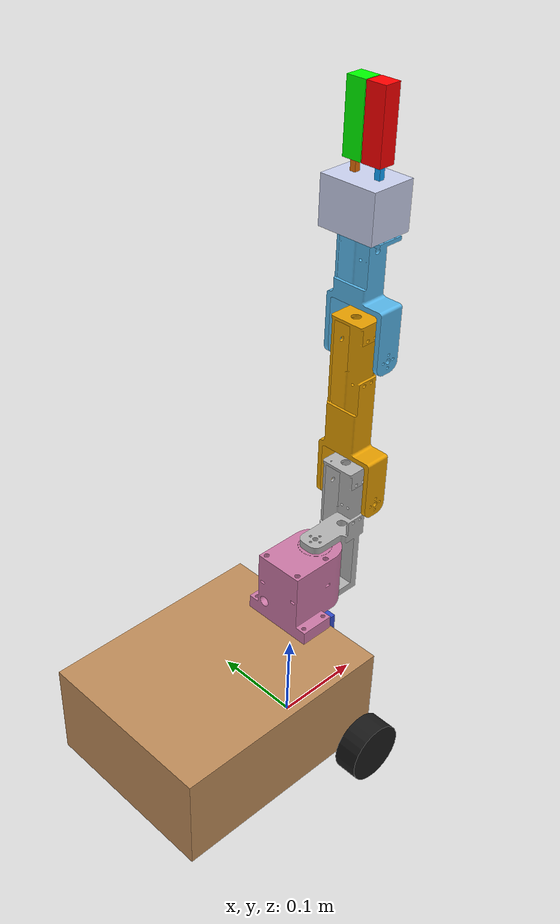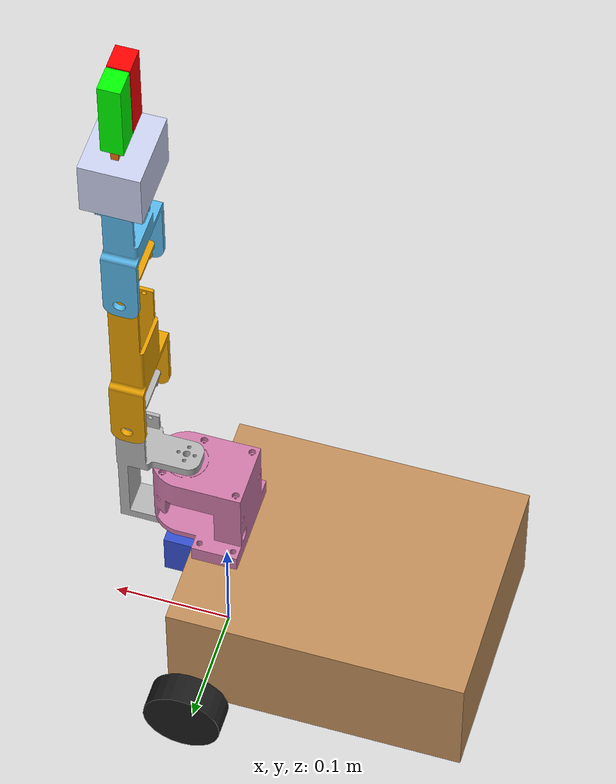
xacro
<?xml version="1.0"?>
<robot xmlns:xacro="http://www.ros.org/wiki/xacro" name="mobile_nanobot">
    <xacro:arg name="initial_positions_file" default="initial_positions.yaml" />

    <!-- Import mobile_nanobot urdf file -->
    <xacro:include filename="$(find my_robot_description)/urdf/mobile_nanobot.xacro" />

    <!-- Import control_xacro -->
    <xacro:include filename="mobile_nanobot.ros2_control.xacro" />

    <xacro:mobile_nanobot_ros2_control name="FakeSystem" initial_positions_file="$(arg initial_positions_file)"/>

</robot>

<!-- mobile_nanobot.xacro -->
<robot name="mobile_nanobot" xmlns:xacro="http://ros.org/wiki/xacro">
    <xacro:include filename="$(find my_robot_description)/urdf/robot.urdf.xacro" />
    <xacro:include filename="$(find my_robot_description)/urdf/arm.urdf" />
    <joint name="arm_base_joint" type="fixed"> <parent link="base_link" />
        <child link="link0" />
        <origin xyz="0.032 0.0 0.1085" rpy="0 0 -1.5708" />
    </joint>
</robot>

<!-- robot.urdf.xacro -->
<robot xmlns:xacro="http://www.ros.org/wiki/xacro" name="mobile_robot">

    <!-- Include Sub-files -->
    <xacro:include filename="inertia_macros.xacro" />
    <xacro:include filename="chassis.xacro" />
    <xacro:include filename="camera.xacro" />

</robot>

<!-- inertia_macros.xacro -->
<robot xmlns:xacro="http://www.ros.org/wiki/xacro">

    <xacro:macro name="inertial_box" params="mass x y z *origin">
        <inertial>
            <xacro:insert_block name="origin"/>
            <mass value="${mass}"/>
            <inertia ixx="${(1/12) * mass * (y*y + z*z)}" ixy="0.0" ixz="0.0"
                     iyy="${(1/12) * mass * (x*x + z*z)}" iyz="0.0"
                     izz="${(1/12) * mass * (x*x + y*y)}"/>
        </inertial>
    </xacro:macro>

    <xacro:macro name="inertial_cylinder" params="mass length radius *origin">
        <inertial>
            <xacro:insert_block name="origin"/>
            <mass value="${mass}"/>
            <inertia ixx="${(1/12) * mass * (3*radius*radius + length*length)}" ixy="0.0" ixz="0.0"
                     iyy="${(1/12) * mass * (3*radius*radius + length*length)}" iyz="0.0"
                     izz="${(1/2) * mass * (radius*radius)}"/>
        </inertial>
    </xacro:macro>

    <xacro:macro name="inertial_sphere" params="mass radius *origin">
        <inertial>
            <xacro:insert_block name="origin"/>
            <mass value="${mass}"/>
            <inertia ixx="${(2/5) * mass * (radius*radius)}" ixy="0.0" ixz="0.0"
                     iyy="${(2/5) * mass * (radius*radius)}" iyz="0.0"
                     izz="${(2/5) * mass * (radius*radius)}"/>
        </inertial>
    </xacro:macro>

</robot>

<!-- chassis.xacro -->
<robot xmlns:xacro="http://www.ros.org/wiki/xacro">

    <!-- MATERIALS & COLORS FOR RVIZ -->
    <material name="wood_mdf">
        <color rgba="0.75 0.55 0.35 1.0"/>
    </material>
    <material name="black">
        <color rgba="0.1 0.1 0.1 1.0"/>
    </material>
    <material name="white">
        <color rgba="0.9 0.9 0.9 1.0"/>
    </material>

    <!-- PROPERTY DEFINITIONS (Tweak these to match physical dimensions) -->
    <xacro:property name="chassis_length" value="0.250"/> <!-- 25 cm -->
    <xacro:property name="chassis_width"  value="0.20"/> <!-- 18 cm -->
    <xacro:property name="chassis_height" value="0.1075"/> <!-- 6 cm 0.060-->
    <xacro:property name="chassis_mass"   value="0.800"/>

    <xacro:property name="wheel_radius"  value="0.033"/> <!-- 66 mm diameter -->
    <xacro:property name="wheel_thickness" value="0.026"/> <!-- 26 mm width -->
    <xacro:property name="wheel_mass"      value="0.050"/>
    <xacro:property name="wheel_offset_y"  value="0.1165"/> <!-- Track width center-to-wheel -->
    <xacro:property name="wheel_offset_x"  value="0.0"/> <!-- Axle position along length -->

    <xacro:property name="caster_radius"  value="0.015"/> <!-- 30 mm caster ball -->
    <xacro:property name="caster_mass"    value="0.030"/>
    <xacro:property name="caster_offset_x" value="-0.185"/> <!-- Front/rear caster position -->

    <!-- 1. BASE FOOTPRINT (Ground plane z=0) -->
    <link name="base_footprint"/>

    <joint name="base_footprint_joint" type="fixed">
        <parent link="base_footprint"/>
        <child link="base_link"/>
        <origin xyz="0 0 ${wheel_radius}" rpy="0 0 0"/>
    </joint>

    <!-- 2. BASE LINK (Main MDF Chassis) -->
    <link name="base_link">
        <visual>
            <origin xyz="-0.105 0 ${chassis_height/2}" rpy="0 0 0"/>
            <geometry>
                <box size="${chassis_length} ${chassis_width} ${chassis_height}"/>
            </geometry>
            <material name="wood_mdf"/>
        </visual>
        <collision>
            <origin xyz="-0.105 0 ${chassis_height/2}" rpy="0 0 0"/>
            <geometry>
                <box size="${chassis_length} ${chassis_width} ${chassis_height}"/>
            </geometry>
        </collision>
        <xacro:inertial_box mass="${chassis_mass}" x="${chassis_length}" y="${chassis_width}" z="${chassis_height}">
            <origin xyz="-0.105 0 ${chassis_height/2}" rpy="0 0 0"/>
        </xacro:inertial_box>
    </link>

    <!-- 3. LEFT WHEEL -->
    <joint name="left_wheel_joint" type="continuous">
        <parent link="base_link"/>
        <child link="left_wheel"/>
        <origin xyz="${wheel_offset_x} ${wheel_offset_y} 0" rpy="-${pi/2} 0 0"/>
        <axis xyz="0 0 1"/>
    </joint>

    <link name="left_wheel">
        <visual>
            <geometry>
                <cylinder radius="${wheel_radius}" length="${wheel_thickness}"/>
            </geometry>
            <material name="black"/>
        </visual>
        <collision>
            <geometry>
                <cylinder radius="${wheel_radius}" length="${wheel_thickness}"/>
            </geometry>
        </collision>
        <xacro:inertial_cylinder mass="${wheel_mass}" length="${wheel_thickness}" radius="${wheel_radius}">
            <origin xyz="0 0 0" rpy="0 0 0"/>
        </xacro:inertial_cylinder>
    </link>

    <!-- 4. RIGHT WHEEL -->
    <joint name="right_wheel_joint" type="continuous">
        <parent link="base_link"/>
        <child link="right_wheel"/>
        <origin xyz="${wheel_offset_x} -${wheel_offset_y} 0" rpy="${pi/2} 0 0"/>
        <axis xyz="0 0 -1"/>
    </joint>

    <link name="right_wheel">
        <visual>
            <geometry>
                <cylinder radius="${wheel_radius}" length="${wheel_thickness}"/>
            </geometry>
            <material name="black"/>
        </visual>
        <collision>
            <geometry>
                <cylinder radius="${wheel_radius}" length="${wheel_thickness}"/>
            </geometry>
        </collision>
        <xacro:inertial_cylinder mass="${wheel_mass}" length="${wheel_thickness}" radius="${wheel_radius}">
            <origin xyz="0 0 0" rpy="0 0 0"/>
        </xacro:inertial_cylinder>
    </link>

    <!-- 5. CASTER WHEEL -->
    <joint name="caster_wheel_joint" type="fixed">
        <parent link="base_link"/>
        <child link="caster_wheel"/>
        <origin xyz="${caster_offset_x} 0 -${wheel_radius - caster_radius}" rpy="0 0 0"/>
    </joint>

    <link name="caster_wheel">
        <visual>
            <geometry>
                <sphere radius="${caster_radius}"/>
            </geometry>
            <material name="white"/>
        </visual>
        <collision>
            <geometry>
                <sphere radius="${caster_radius}"/>
            </geometry>
        </collision>
        <xacro:inertial_sphere mass="${caster_mass}" radius="${caster_radius}">
            <origin xyz="0 0 0" rpy="0 0 0"/>
        </xacro:inertial_sphere>
    </link>

</robot>

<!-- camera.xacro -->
<robot xmlns:xacro="http://www.ros.org/wiki/xacro">

    <material name="camera_blue">
        <color rgba="0.2 0.3 0.8 1.0"/>
    </material>

    <!-- LDS-02RR Physical Dimensions -->
    <xacro:property name="camera_width" value="0.04"/> <!-- ~76mm diameter -->
    <xacro:property name="camera_length" value="0.04"/> <!-- ~76mm diameter -->
    <xacro:property name="camera_height" value="0.07"/> <!-- ~40mm puck height -->
    <xacro:property name="camera_mass"   value="0.200"/>
    <xacro:property name="camera_elevation"   value="0.0725"/>

    <!-- Joint: Attach camera to the top deck of base_link -->
    <joint name="camera_optical_joint" type="fixed">
        <parent link="base_link"/>
        <child link="camera_optical_frame"/>
        <!-- Mounted 6cm forward on top deck -->
        <origin xyz="0.013 0 ${camera_elevation}" rpy="-1.570796327 0 -1.570796327"/>
    </joint>

    <!-- Link: Frame ID used by ROS 2 /scan message -->
    <link name="camera_optical_frame">
        <visual>
            <geometry>
                <box size="${camera_length} ${camera_width} ${camera_height}"/>
            </geometry>
            <material name="camera_blue"/>
        </visual>
        <collision>
            <geometry>
                <box size="${camera_length} ${camera_width} ${camera_height}"/>
            </geometry>
        </collision>
        <xacro:inertial_box mass="${camera_mass}" x="${camera_length}" y="${camera_width}" z="${camera_height}">
            <origin xyz="0 0 0" rpy="0 0 0"/>
        </xacro:inertial_box>
    </link>

</robot>

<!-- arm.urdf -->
<robot name="nanobot" xmlns:xacro="http://www.ros.org/wiki/xacro" >

  <xacro:property name="chassis_length" value="0.405"/>
  <xacro:property name="chassis_width" value="0.405"/>
  <xacro:property name="chassis_mass" value="1.0"/>
  <xacro:property name="wheel_radius" value="0.0625"/>
  <xacro:property name="wheel_thickness" value="0.030"/>
  <xacro:property name="wheel_mass" value="0.05"/>
  <xacro:property name="wheel_offset_x" value="0.025"/>
  <xacro:property name="wheel_offset_y" value="0.2225"/>
  <xacro:property name="wheel_offset_z" value="-0.025"/>
  <xacro:property name="caster_wheel_radius" value="0.02"/>
  <xacro:property name="caster_wheel_mass" value="0.01"/>
  <xacro:property name="caster_wheel_offset_x" value="0.475"/>
  <xacro:property name="caster_wheel_offset_y" value="0.2225"/>
  <xacro:property name="caster_wheel_offset_z" value="${wheel_offset_z - wheel_radius + caster_wheel_radius}"/>

  <xacro:property name="link_0_radius" value="0.08"/>
  <xacro:property name="link_0_height" value="0.062"/>

  <xacro:property name="link_1_radius" value="0.08"/>
  <xacro:property name="link_1_height" value="0.1655"/>

  <xacro:property name="link_2_width" value="0.1346"/>
  <xacro:property name="link_2_length" value="0.1346"/>
  <xacro:property name="link_2_height" value="0.2202"/>

  <xacro:property name="link_3_width" value="0.0776"/>
  <xacro:property name="link_3_length" value="0.095"/>
  <xacro:property name="link_3_height" value="0.1299"/>

  <xacro:property name="link_4_width" value="0.0719"/>
  <xacro:property name="link_4_length" value="0.0891"/>
  <xacro:property name="link_4_height" value="0.0949"/>

  <xacro:property name="link_5_width" value="0.048"/>
  <xacro:property name="link_5_length" value="0.0700"/>
  <xacro:property name="link_5_height" value="0.0510"/>

  <xacro:property name="hand_width" value="0.049"/>
  <xacro:property name="hand_length" value="0.0632"/>
  <xacro:property name="hand_height" value="0.0490"/>

  <xacro:property name="gripper_servo_gear_width" value="0.006"/>
  <xacro:property name="gripper_servo_gear_length" value="0.006"/>
  <xacro:property name="gripper_servo_gear_height" value="0.0399"/>

  <xacro:property name="tip_gripper_servo_width" value="0.018"/>
  <xacro:property name="tip_gripper_servo_length" value="0.021"/>
  <xacro:property name="tip_gripper_servo_height" value="0.07"/>

  <xacro:property name="pivot_arm_gripper_servo_width" value="0.006"/>
  <xacro:property name="pivot_arm_gripper_servo_length" value="0.006"/>
  <xacro:property name="pivot_arm_gripper_servo_height" value="0.0399"/>

  <xacro:property name="gripper_idol_gear_width" value="0.006"/>
  <xacro:property name="gripper_idol_gear_length" value="0.006"/>
  <xacro:property name="gripper_idol_gear_height" value="0.0399"/>

  <xacro:property name="tip_gripper_idol_width" value="0.018"/>
  <xacro:property name="tip_gripper_idol_length" value="0.021"/>
  <xacro:property name="tip_gripper_idol_height" value="0.07"/>

  <xacro:property name="pivot_arm_gripper_idol_width" value="0.006"/>
  <xacro:property name="pivot_arm_gripper_idol_length" value="0.006"/>
  <xacro:property name="pivot_arm_gripper_idol_height" value="0.0399"/>

  <xacro:property name="joint_damping" value="21.75"/>
  <xacro:property name="joint_friction" value="10.48"/>
  <xacro:property name="joint_spring_stiffness" value="0"/>
  <xacro:property name="joint_spring_reference" value="0"/>
  <xacro:property name="gripper_joint_damping" value="0.01"/>
  <xacro:property name="gripper_joint_friction" value="0.01"/>
  <xacro:property name="gripper_joint_spring_stiffness" value="0"/>
  <xacro:property name="gripper_joint_spring_reference" value="0"/>

  <xacro:property name="scale_finger_length" value="0.9" />

  <link name="link0">
    <visual>
      <origin xyz="0 0 0" rpy="0 0 0"/>
      <geometry>
        <mesh filename="package://my_robot_description/meshes/link0.stl" scale="0.001 0.001 0.001"/>
      </geometry>
    </visual>
    <collision>
      <origin xyz="0 0 0" rpy="0 0 0"/>
      <geometry>
        <mesh filename="package://my_robot_description/meshes/link0.stl" scale="0.001 0.001 0.001"/>
      </geometry>
    </collision>
  </link>

  <joint name="joint1" type="revolute">
    <parent link="link0"/>
    <child link="link1"/>
    <origin xyz="0 0 0.0" rpy="0 0 0"/>
    <axis xyz="0 0 1"/>
    <limit lower="-1.570796327" upper="1.570796327" effort="100" velocity="100"/>
  </joint>

  <link name="link1">
    <inertial>
      <origin xyz="0.0 0.0 0.0" rpy="0 0 0"/>
      <mass value="0.798614"/>
      <inertia ixx="0.00120156" ixy="0" ixz="0"
               iyy="0.00113744" iyz="0"
               izz="0.0009388"/>
    </inertial>
    <visual>
      <origin xyz="0 0 0" rpy="0 0 0"/>
      <geometry>
        <mesh filename="package://my_robot_description/meshes/link1.stl" scale="0.001 0.001 0.001"/>
      </geometry>
    </visual>
    <collision>
      <origin xyz="0 0 0" rpy="0 0 0"/>
      <geometry>
        <mesh filename="package://my_robot_description/meshes/link1.stl" scale="0.001 0.001 0.001"/>
      </geometry>
    </collision>
  </link>

  <joint name="joint2" type="revolute">
    <parent link="link1"/>
    <child link="link2"/>
    <origin xyz="0 0.0405055 0.133875" rpy="0 0 0"/>
    <axis xyz="1 0 0"/>
    <limit lower="-2.617993878" upper="0.523598776" effort="100" velocity="100"/>
  </joint>

  <link name="link2">
    <inertial>
      <origin xyz="0.000259233 -3.3552e-06 0.0116129" rpy="0 0 0"/>
      <mass value="0.798614"/>
      <inertia ixx="0.00120156" ixy="0" ixz="0"
               iyy="0.00113744" iyz="0"
               izz="0.0009388"/>
    </inertial>
    <visual>
      <origin xyz="0 0 0" rpy="0 0 0"/>
      <geometry>
        <mesh filename="package://my_robot_description/meshes/link2.stl" scale="0.001 0.001 0.001"/>
      </geometry>
    </visual>
    <collision>
      <origin xyz="0 0 0" rpy="0 0 0"/>
      <geometry>
        <mesh filename="package://my_robot_description/meshes/link2.stl" scale="0.001 0.001 0.001"/>
      </geometry>
    </collision>
  </link>

  <joint name="joint3" type="revolute">
    <parent link="link2"/>
    <child link="link3"/>
    <origin xyz="0 0.0 0.165188" rpy="0.0 0 0"/>
    <axis xyz="1 0 0"/>
    <limit lower="-2.617993878" upper="0.523598776" effort="100" velocity="100"/>
  </joint>

  <link name="link3">
    <inertial>
      <origin xyz="0.000259233 -3.3552e-06 0.0116129" rpy="0 0 0"/>
      <mass value="0.798614"/>
      <inertia ixx="0.00120156" ixy="0" ixz="0"
               iyy="0.00113744" iyz="0"
               izz="0.0009388"/>
    </inertial>
    <visual>
      <origin xyz="0 0 0" rpy="0 0 0"/>
      <geometry>
        <mesh filename="package://my_robot_description/meshes/link3.stl" scale="0.001 0.001 0.001"/>
      </geometry>
    </visual>
    <collision>
      <origin xyz="0 0 0" rpy="0 0 0"/>
      <geometry>
        <mesh filename="package://my_robot_description/meshes/link3.stl" scale="0.001 0.001 0.001"/>
      </geometry>
    </collision>
  </link>

  <joint name="joint4" type="fixed">
    <parent link="link3"/>
    <child link="link4"/>
    <origin xyz="0 0.0 0.117188" rpy="0.0 0 0"/>
  </joint>

  <link name="link4">
  </link>

  <joint name="wrist_joint" type="fixed">
    <parent link="link4"/>
    <child link="wrist"/>
    <origin xyz="0.0 0.0 0.0" rpy="0 0 0"/>
  </joint>

  <link name="wrist">
  </link>

  <!-- Virtual link representing the grasping point -->
  <link name="tcp_link"/>

  <joint name="wrist_to_tcp" type="fixed">
    <parent link="wrist"/>
    <child link="tcp_link"/>
    <!-- Adjust xyz based on your gripper's length offset from the wrist -->
    <origin xyz="0.0 0.0 0.08" rpy="0 0 0"/>
  </joint>

  <link name="robot_link7" />
  <joint name="robot_joint7" type="fixed">
      <origin rpy="0 0 0" xyz="0 0 0.0" />
      <parent link="wrist" />
      <child link="robot_link7" />
      <axis xyz="0 0 0" />
  </joint>

  <link
    name="robot_hand">
    <xacro:inertial_box mass="0.000151743" x="${hand_width}" y="${hand_length}" z="${hand_height}">
        <origin xyz="0 0 ${hand_height/2}" rpy="0 0 0"/>
    </xacro:inertial_box>
    <visual>
      <origin
        xyz="0 0 ${hand_height/2.0}"
        rpy="0 0 0" />
      <geometry>
        <box size="${hand_width} ${hand_length} ${hand_height}"/>
      </geometry>
      <material
        name="">
        <color
          rgba="0.79216 0.81961 0.93333 1" />
      </material>
    </visual>
    <collision>
      <origin
        xyz="0 0 ${hand_height/2.0}"
        rpy="0 0 0" />
      <geometry>
        <box size="${hand_width} ${hand_length} ${hand_height}"/>
      </geometry>
    </collision>
  </link>

  <joint
    name="robot_hand_joint"
    type="fixed">
    <origin
      xyz="0 0 0"
      rpy="0 0 1.570796327" />
    <parent
      link="robot_link7" />
    <child
      link="robot_hand" />
  </joint>

  <link
    name="Gripper_Servo_Gear">
    <inertial>
      <origin
        xyz="0.0 0.0 ${gripper_servo_gear_height/2}"
        rpy="0 0 0" />
      <mass
        value="0.000476207785199474" />
      <inertia
        ixx="0.001"
        ixy="0"
        ixz="0"
        iyy="0.001"
        iyz="0"
        izz="0.001" />
    </inertial>
    <visual>
      <origin
        xyz="0 0 ${gripper_servo_gear_height/2.0}"
        rpy="0 0 0" />
      <geometry>
        <box size="${gripper_servo_gear_width} ${gripper_servo_gear_length} ${gripper_servo_gear_height}"/>
      </geometry>
      <material
        name="">
        <color
          rgba="0.9098 0.44314 0.031373 1" />
      </material>
    </visual>
    <collision>
      <origin
        xyz="0 0 ${gripper_servo_gear_height/2.0}"
        rpy="0 0 0" />
      <geometry>
        <box size="${gripper_servo_gear_width} ${gripper_servo_gear_length} ${gripper_servo_gear_height}"/>
      </geometry>
    </collision>
  </link>

  <joint
    name="robot_finger_joint1"
    type="revolute">
    <origin
      xyz="0 0.014 0.022"
      rpy="0.0 0.0 0.0" />
    <parent
      link="robot_hand" />
    <child
      link="Gripper_Servo_Gear" />
    <axis
      xyz="1 0 0" />
    <limit effort="5.0" lower="-1.5" upper="1.5" velocity="1.0"/>
    <dynamics damping="${gripper_joint_damping}" friction="${gripper_joint_friction}" spring_reference="${gripper_joint_spring_reference}" spring_stiffness="{gripper_joint_spring_stiffness}"/>
  </joint>

  <link
    name="robot_rightfinger">
    <inertial>
      <origin
        xyz="0.0 0.003 ${tip_gripper_servo_height/2.0}"
        rpy="0 0 0" />
      <mass
        value="0.000476207785199474" />
      <inertia
        ixx="0.001"
        ixy="0"
        ixz="0"
        iyy="0.001"
        iyz="0"
        izz="0.001" />
    </inertial>

    <visual>
      <origin
        xyz="0 -0.003 ${tip_gripper_servo_height/2.0}"
        rpy="0 0 0" />
      <geometry>
        <box size="${tip_gripper_servo_width} ${tip_gripper_servo_length} ${tip_gripper_servo_height}"/>
      </geometry>
      <material
        name="">
        <color
          rgba="0 1 0 1" />
      </material>
    </visual>
    <collision>
      <origin
        xyz="0 -0.003 ${tip_gripper_servo_height/2.0}"
        rpy="0 0 0" />
      <geometry>
        <box size="${tip_gripper_servo_width} ${tip_gripper_servo_length} ${tip_gripper_servo_height}"/>
      </geometry>
    </collision>
  </link>

  <joint
    name="Tip_Gripper_Servo_Joint"
    type="revolute">
    <origin
      xyz="0 0 0.04"
      rpy="0 0 0" />
    <parent
      link="Gripper_Servo_Gear" />
    <child
      link="robot_rightfinger" />
    <axis
      xyz="1 0 0" />
    <limit effort="5.0" lower="-1.5" upper="1.5" velocity="1.0"/>
    <dynamics damping="${gripper_joint_damping}" friction="${gripper_joint_friction}" spring_reference="${gripper_joint_spring_reference}" spring_stiffness="{gripper_joint_spring_stiffness}"/>
  </joint>

  <link
    name="Gripper_Idol_Gear">
    <inertial>
      <origin
        xyz="0.0 0.0 ${gripper_idol_gear_height/2.0}"
        rpy="0 0 0" />
      <mass
        value="0.000476207785199481" />
        <inertia
        ixx="0.001"
        ixy="0"
        ixz="0"
        iyy="0.001"
        iyz="0"
        izz="0.001" />
    </inertial>
    <visual>
      <origin
        xyz="0 0 ${gripper_idol_gear_height/2.0}"
        rpy="0 0 0" />
      <geometry>
        <box size="${gripper_idol_gear_width} ${gripper_idol_gear_length} ${gripper_idol_gear_height}"/>
      </geometry>
      <material
        name="">
        <color
          rgba="0.058824 0.64706 1 1" />
      </material>
    </visual>
    <collision>
      <origin
        xyz="0 0 ${gripper_idol_gear_height/2.0}"
        rpy="0 0 0" />
      <geometry>
        <box size="${gripper_idol_gear_width} ${gripper_idol_gear_length} ${gripper_idol_gear_height}"/>
      </geometry>
    </collision>
  </link>

  <joint
    name="robot_finger_joint2"
    type="revolute">
    <origin
      xyz="0 -0.014 0.022"
      rpy="0.0 0.0 0.0" />
    <parent
      link="robot_hand" />
    <child
      link="Gripper_Idol_Gear" />
    <axis
      xyz="1 0 0" />
    <limit effort="5.0" lower="-1.5" upper="1.5" velocity="1.0"/>
    <dynamics damping="${gripper_joint_damping}" friction="${gripper_joint_friction}" spring_reference="${gripper_joint_spring_reference}" spring_stiffness="{gripper_joint_spring_stiffness}"/>
  </joint>

  <link
    name="robot_leftfinger">
    <inertial>
      <origin
        xyz="0.0 0.003 ${tip_gripper_idol_height/2.0}"
        rpy="0 0 0" />
      <mass
        value="0.000476207785199481" />
        <inertia
        ixx="0.001"
        ixy="0"
        ixz="0"
        iyy="0.001"
        iyz="0"
        izz="0.001" />
    </inertial>
    <visual>
      <origin
        xyz="0 0.003 ${tip_gripper_idol_height/2.0}"
        rpy="0 0 0" />
      <geometry>
        <box size="${tip_gripper_idol_width} ${tip_gripper_idol_length} ${tip_gripper_idol_height}"/>
      </geometry>
      <material
        name="">
        <color
          rgba="1 0 0 1" />
      </material>
    </visual>
    <collision>
      <origin
        xyz="0 0.003 ${tip_gripper_idol_height/2.0}"
        rpy="0 0 0" />
      <geometry>
        <box size="${tip_gripper_idol_width} ${tip_gripper_idol_length} ${tip_gripper_idol_height}"/>
      </geometry>
    </collision>
  </link>

  <joint
    name="Tip_Gripper_Idol_Joint"
    type="revolute">
    <origin
      xyz="0 0 0.04"
      rpy="0 0 0" />
    <parent
      link="Gripper_Idol_Gear" />
    <child
      link="robot_leftfinger" />
    <axis
      xyz="1 0 0" />
    <limit effort="5.0" lower="-1.5" upper="1.5" velocity="1.0"/>
    <dynamics damping="${gripper_joint_damping}" friction="${gripper_joint_friction}" spring_reference="${gripper_joint_spring_reference}" spring_stiffness="{gripper_joint_spring_stiffness}"/>
  </joint>

</robot>
